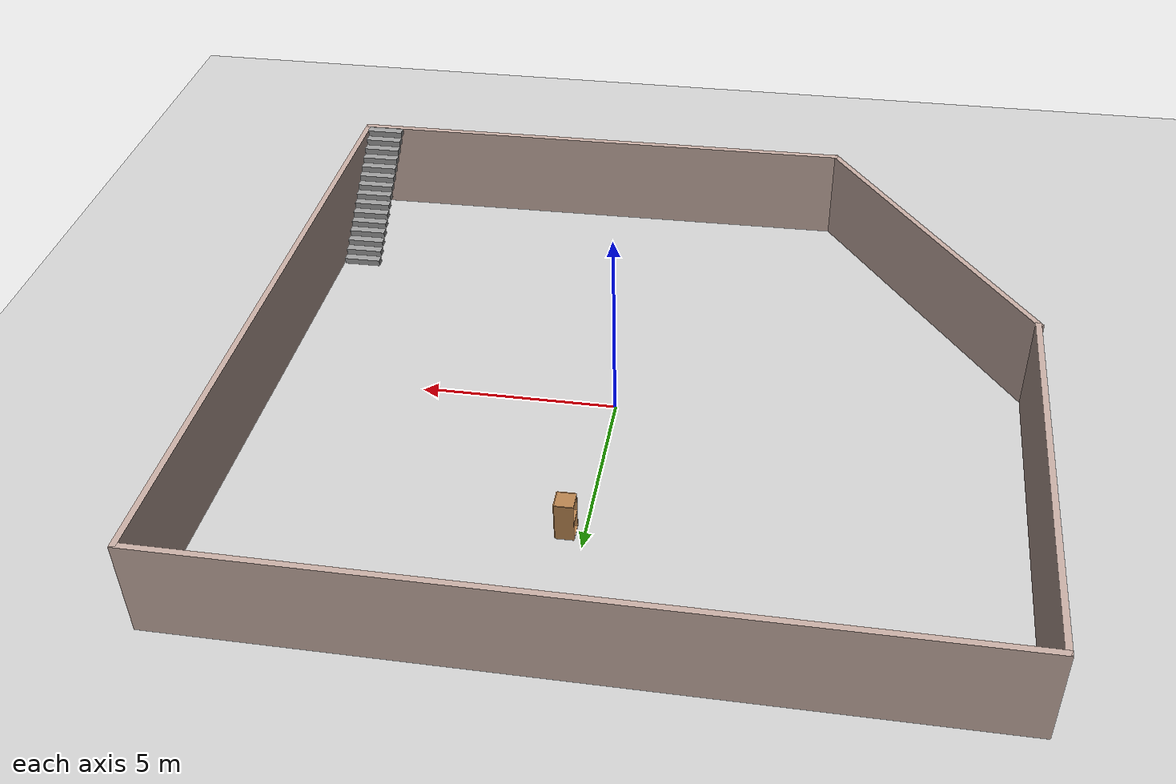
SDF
<sdf version="1.7">
 <world name="default">
  <light name="sun" type="directional">
   <pose>0 0 10 0 -0 0</pose>
   <diffuse>0.8 0.8 0.8 1</diffuse>
   <specular>0.2 0.2 0.2 1</specular>
   <attenuation>
    <range>1000</range>
    <constant>0.9</constant>
    <linear>0.01</linear>
    <quadratic>0.001</quadratic>
   </attenuation>
   <direction>-0.5 0.1 -0.9</direction>
   <spot><inner_angle>0</inner_angle><outer_angle>0</outer_angle><falloff>0</falloff></spot>
  </light>
  <model name="ground_plane">
   <static>1</static>
   <link name="link">
    <collision name="collision">
     <geometry><plane><normal>0 0 1</normal><size>100 100</size></plane></geometry>
     <surface><friction><ode><mu>100</mu><mu2>50</mu2></ode></friction></surface>
    </collision>
    <visual name="visual">
     <cast_shadows>0</cast_shadows>
     <geometry><plane><normal>0 0 1</normal><size>100 100</size></plane></geometry>
     <material>
      <script><uri>file://media/materials/scripts/gazebo.material</uri><name>Gazebo/Grey</name></script>
     </material>
    </visual>
   </link>
  </model>
  <gravity>0 0 -9.8</gravity>
  <magnetic_field>6e-06 2.3e-05 -4.2e-05</magnetic_field>
  <atmosphere type="adiabatic"/>
  <physics type="ode">
   <max_step_size>0.001</max_step_size>
   <real_time_factor>1</real_time_factor>
   <real_time_update_rate>1000</real_time_update_rate>
  </physics>
  <scene><ambient>0.4 0.4 0.4 1</ambient><background>0.7 0.7 0.7 1</background><shadows>1</shadows></scene>
  <audio><device>default</device></audio>
  <spherical_coordinates>
   <surface_model>EARTH_WGS84</surface_model>
   <latitude_deg>0</latitude_deg>
   <longitude_deg>0</longitude_deg>
   <elevation>0</elevation>
   <heading_deg>0</heading_deg>
  </spherical_coordinates>
  <model name="project2_warehouse">
   <pose>-0.635756 -0.074975 0 0 -0 0</pose>
   <link name="Stairs_0">
    <visual name="Stairs_0_Visual_0">
     <pose>8.82005 -5.32583 0.083333 0 -0 0</pose>
     <geometry><box><size>1 0.233333 0.166667</size></box></geometry>
     <material>
      <script><uri>file://media/materials/scripts/gazebo.material</uri><name>Gazebo/Grey</name></script>
      <ambient>1 1 1 1</ambient>
     </material>
     <meta><layer>0</layer></meta>
    </visual>
    <collision name="Stairs_0_Collision_0">
     <geometry><box><size>1 0.233333 0.166667</size></box></geometry>
     <pose>8.82005 -5.32583 0.083333 0 -0 0</pose>
    </collision>
    <visual name="Stairs_0_Visual_1">
     <pose>8.82005 -5.55917 0.25 0 -0 0</pose>
     <geometry><box><size>1 0.233333 0.166667</size></box></geometry>
     <material>
      <script><uri>file://media/materials/scripts/gazebo.material</uri><name>Gazebo/Grey</name></script>
      <ambient>1 1 1 1</ambient>
     </material>
     <meta><layer>0</layer></meta>
    </visual>
    <collision name="Stairs_0_Collision_1">
     <geometry><box><size>1 0.233333 0.166667</size></box></geometry>
     <pose>8.82005 -5.55917 0.25 0 -0 0</pose>
    </collision>
    <visual name="Stairs_0_Visual_2">
     <pose>8.82005 -5.7925 0.416667 0 -0 0</pose>
     <geometry><box><size>1 0.233333 0.166667</size></box></geometry>
     <material>
      <script><uri>file://media/materials/scripts/gazebo.material</uri><name>Gazebo/Grey</name></script>
      <ambient>1 1 1 1</ambient>
     </material>
     <meta><layer>0</layer></meta>
    </visual>
    <collision name="Stairs_0_Collision_2">
     <geometry><box><size>1 0.233333 0.166667</size></box></geometry>
     <pose>8.82005 -5.7925 0.416667 0 -0 0</pose>
    </collision>
    <visual name="Stairs_0_Visual_3">
     <pose>8.82005 -6.02583 0.583333 0 -0 0</pose>
     <geometry><box><size>1 0.233333 0.166667</size></box></geometry>
     <material>
      <script><uri>file://media/materials/scripts/gazebo.material</uri><name>Gazebo/Grey</name></script>
      <ambient>1 1 1 1</ambient>
     </material>
     <meta><layer>0</layer></meta>
    </visual>
    <collision name="Stairs_0_Collision_3">
     <geometry><box><size>1 0.233333 0.166667</size></box></geometry>
     <pose>8.82005 -6.02583 0.583333 0 -0 0</pose>
    </collision>
    <visual name="Stairs_0_Visual_4">
     <pose>8.82005 -6.25917 0.75 0 -0 0</pose>
     <geometry><box><size>1 0.233333 0.166667</size></box></geometry>
     <material>
      <script><uri>file://media/materials/scripts/gazebo.material</uri><name>Gazebo/Grey</name></script>
      <ambient>1 1 1 1</ambient>
     </material>
     <meta><layer>0</layer></meta>
    </visual>
    <collision name="Stairs_0_Collision_4">
     <geometry><box><size>1 0.233333 0.166667</size></box></geometry>
     <pose>8.82005 -6.25917 0.75 0 -0 0</pose>
    </collision>
    <visual name="Stairs_0_Visual_5">
     <pose>8.82005 -6.4925 0.916667 0 -0 0</pose>
     <geometry><box><size>1 0.233333 0.166667</size></box></geometry>
     <material>
      <script><uri>file://media/materials/scripts/gazebo.material</uri><name>Gazebo/Grey</name></script>
      <ambient>1 1 1 1</ambient>
     </material>
     <meta><layer>0</layer></meta>
    </visual>
    <collision name="Stairs_0_Collision_5">
     <geometry><box><size>1 0.233333 0.166667</size></box></geometry>
     <pose>8.82005 -6.4925 0.916667 0 -0 0</pose>
    </collision>
    <visual name="Stairs_0_Visual_6">
     <pose>8.82005 -6.72583 1.08333 0 -0 0</pose>
     <geometry><box><size>1 0.233333 0.166667</size></box></geometry>
     <material>
      <script><uri>file://media/materials/scripts/gazebo.material</uri><name>Gazebo/Grey</name></script>
      <ambient>1 1 1 1</ambient>
     </material>
     <meta><layer>0</layer></meta>
    </visual>
    <collision name="Stairs_0_Collision_6">
     <geometry><box><size>1 0.233333 0.166667</size></box></geometry>
     <pose>8.82005 -6.72583 1.08333 0 -0 0</pose>
    </collision>
    <visual name="Stairs_0_Visual_7">
     <pose>8.82005 -6.95917 1.25 0 -0 0</pose>
     <geometry><box><size>1 0.233333 0.166667</size></box></geometry>
     <material>
      <script><uri>file://media/materials/scripts/gazebo.material</uri><name>Gazebo/Grey</name></script>
      <ambient>1 1 1 1</ambient>
     </material>
     <meta><layer>0</layer></meta>
    </visual>
    <collision name="Stairs_0_Collision_7">
     <geometry><box><size>1 0.233333 0.166667</size></box></geometry>
     <pose>8.82005 -6.95917 1.25 0 -0 0</pose>
    </collision>
    <visual name="Stairs_0_Visual_8">
     <pose>8.82005 -7.1925 1.41667 0 -0 0</pose>
     <geometry><box><size>1 0.233333 0.166667</size></box></geometry>
     <material>
      <script><uri>file://media/materials/scripts/gazebo.material</uri><name>Gazebo/Grey</name></script>
      <ambient>1 1 1 1</ambient>
     </material>
     <meta><layer>0</layer></meta>
    </visual>
    <collision name="Stairs_0_Collision_8">
     <geometry><box><size>1 0.233333 0.166667</size></box></geometry>
     <pose>8.82005 -7.1925 1.41667 0 -0 0</pose>
    </collision>
    <visual name="Stairs_0_Visual_9">
     <pose>8.82005 -7.42583 1.58333 0 -0 0</pose>
     <geometry><box><size>1 0.233333 0.166667</size></box></geometry>
     <material>
      <script><uri>file://media/materials/scripts/gazebo.material</uri><name>Gazebo/Grey</name></script>
      <ambient>1 1 1 1</ambient>
     </material>
     <meta><layer>0</layer></meta>
    </visual>
    <collision name="Stairs_0_Collision_9">
     <geometry><box><size>1 0.233333 0.166667</size></box></geometry>
     <pose>8.82005 -7.42583 1.58333 0 -0 0</pose>
    </collision>
    <visual name="Stairs_0_Visual_10">
     <pose>8.82005 -7.65917 1.75 0 -0 0</pose>
     <geometry><box><size>1 0.233333 0.166667</size></box></geometry>
     <material>
      <script><uri>file://media/materials/scripts/gazebo.material</uri><name>Gazebo/Grey</name></script>
      <ambient>1 1 1 1</ambient>
     </material>
     <meta><layer>0</layer></meta>
    </visual>
    <collision name="Stairs_0_Collision_10">
     <geometry><box><size>1 0.233333 0.166667</size></box></geometry>
     <pose>8.82005 -7.65917 1.75 0 -0 0</pose>
    </collision>
    <visual name="Stairs_0_Visual_11">
     <pose>8.82005 -7.8925 1.91667 0 -0 0</pose>
     <geometry><box><size>1 0.233333 0.166667</size></box></geometry>
     <material>
      <script><uri>file://media/materials/scripts/gazebo.material</uri><name>Gazebo/Grey</name></script>
      <ambient>1 1 1 1</ambient>
     </material>
     <meta><layer>0</layer></meta>
    </visual>
    <collision name="Stairs_0_Collision_11">
     <geometry><box><size>1 0.233333 0.166667</size></box></geometry>
     <pose>8.82005 -7.8925 1.91667 0 -0 0</pose>
    </collision>
    <visual name="Stairs_0_Visual_12">
     <pose>8.82005 -8.12583 2.08333 0 -0 0</pose>
     <geometry><box><size>1 0.233333 0.166667</size></box></geometry>
     <material>
      <script><uri>file://media/materials/scripts/gazebo.material</uri><name>Gazebo/Grey</name></script>
      <ambient>1 1 1 1</ambient>
     </material>
     <meta><layer>0</layer></meta>
    </visual>
    <collision name="Stairs_0_Collision_12">
     <geometry><box><size>1 0.233333 0.166667</size></box></geometry>
     <pose>8.82005 -8.12583 2.08333 0 -0 0</pose>
    </collision>
    <visual name="Stairs_0_Visual_13">
     <pose>8.82005 -8.35917 2.25 0 -0 0</pose>
     <geometry><box><size>1 0.233333 0.166667</size></box></geometry>
     <material>
      <script><uri>file://media/materials/scripts/gazebo.material</uri><name>Gazebo/Grey</name></script>
      <ambient>1 1 1 1</ambient>
     </material>
     <meta><layer>0</layer></meta>
    </visual>
    <collision name="Stairs_0_Collision_13">
     <geometry><box><size>1 0.233333 0.166667</size></box></geometry>
     <pose>8.82005 -8.35917 2.25 0 -0 0</pose>
    </collision>
    <visual name="Stairs_0_Visual_14">
     <pose>8.82005 -8.5925 2.41667 0 -0 0</pose>
     <geometry><box><size>1 0.233333 0.166667</size></box></geometry>
     <material>
      <script><uri>file://media/materials/scripts/gazebo.material</uri><name>Gazebo/Grey</name></script>
      <ambient>1 1 1 1</ambient>
     </material>
     <meta><layer>0</layer></meta>
    </visual>
    <collision name="Stairs_0_Collision_14">
     <geometry><box><size>1 0.233333 0.166667</size></box></geometry>
     <pose>8.82005 -8.5925 2.41667 0 -0 0</pose>
    </collision>
   </link>
   <link name="Wall_0">
    <collision name="Wall_0_Collision">
     <geometry><box><size>19.2094 0.15 2.5</size></box></geometry>
     <pose>0 0 1.25 0 -0 0</pose>
    </collision>
    <visual name="Wall_0_Visual">
     <pose>0 0 1.25 0 -0 0</pose>
     <geometry><box><size>19.2094 0.15 2.5</size></box></geometry>
     <material>
      <script><uri>file://media/materials/scripts/gazebo.material</uri><name>Gazebo/Grey</name></script>
      <ambient>0.760784 0.662745 0.627451 1</ambient>
     </material>
     <meta><layer>0</layer></meta>
    </visual>
    <pose>0.111579 8.83638 0 0 -0 -0.009709</pose>
   </link>
   <link name="Wall_1">
    <collision name="Wall_1_Collision">
     <geometry><box><size>17.6587 0.15 2.5</size></box></geometry>
     <pose>0 0 1.25 0 -0 0</pose>
    </collision>
    <visual name="Wall_1_Visual">
     <pose>0 0 1.25 0 -0 0</pose>
     <geometry><box><size>17.6587 0.15 2.5</size></box></geometry>
     <material>
      <script><uri>file://media/materials/scripts/gazebo.material</uri><name>Gazebo/Grey</name></script>
      <ambient>0.760784 0.662745 0.627451 1</ambient>
     </material>
     <meta><layer>0</layer></meta>
    </visual>
    <pose>9.50729 -0.040077 0 0 -0 -1.58605</pose>
   </link>
   <link name="Wall_2">
    <collision name="Wall_2_Collision">
     <geometry><box><size>13.8695 0.15 2.5</size></box></geometry>
     <pose>0 0 1.25 0 -0 0</pose>
    </collision>
    <visual name="Wall_2_Visual">
     <pose>0 0 1.25 0 -0 0</pose>
     <geometry><box><size>13.8695 0.15 2.5</size></box></geometry>
     <material>
      <script><uri>file://media/materials/scripts/gazebo.material</uri><name>Gazebo/Grey</name></script>
      <ambient>0.760784 0.662745 0.627451 1</ambient>
     </material>
     <meta><layer>0</layer></meta>
    </visual>
    <pose>2.48359 -8.84677 0 0 -0 -3.13382</pose>
   </link>
   <link name="Wall_3">
    <collision name="Wall_3_Collision">
     <geometry><box><size>9.18212 0.15 2.5</size></box></geometry>
     <pose>0 0 1.25 0 -0 0</pose>
    </collision>
    <visual name="Wall_3_Visual">
     <pose>0 0 1.25 0 -0 0</pose>
     <geometry><box><size>9.18212 0.15 2.5</size></box></geometry>
     <material>
      <script><uri>file://media/materials/scripts/gazebo.material</uri><name>Gazebo/Grey</name></script>
      <ambient>0.760784 0.662745 0.627451 1</ambient>
     </material>
     <meta><layer>0</layer></meta>
    </visual>
    <pose>-7.00951 -5.20965 0 0 -0 2.18508</pose>
   </link>
   <link name="Wall_4">
    <collision name="Wall_4_Collision">
     <geometry><box><size>10.5688 0.15 2.5</size></box></geometry>
     <pose>0 0 1.25 0 -0 0</pose>
    </collision>
    <visual name="Wall_4_Visual">
     <pose>0 0 1.25 0 -0 0</pose>
     <geometry><box><size>10.5688 0.15 2.5</size></box></geometry>
     <material>
      <script><uri>file://media/materials/scripts/gazebo.material</uri><name>Gazebo/Grey</name></script>
      <ambient>0.760784 0.662745 0.627451 1</ambient>
     </material>
     <meta><layer>0</layer></meta>
    </visual>
    <pose>-9.49978 3.68956 0 0 -0 1.55504</pose>
   </link>
   <static>1</static>
  </model>
  <model name="cabinet">
   <static>1</static>
   <link name="cabinet_bottom_plate">
    <inertial>
     <pose>0 0 -1 0 -0 0</pose>
     <inertia><ixx>2.05</ixx><ixy>0</ixy><ixz>0</ixz><iyy>2.05</iyy><iyz>0</iyz><izz>2.05</izz></inertia>
     <mass>25</mass>
    </inertial>
    <collision name="cabinet_bottom_plate_geom">
     <pose>0 0 0.01 0 -0 0</pose>
     <geometry><box><size>0.45 0.45 0.02</size></box></geometry>
    </collision>
    <visual name="cabinet_bottom_plate_geom_visual">
     <pose>0 0 0.01 0 -0 0</pose>
     <geometry><box><size>0.45 0.45 0.02</size></box></geometry>
     <material>
      <script><uri>file://media/materials/scripts/gazebo.material</uri><name>Gazebo/Wood</name></script>
     </material>
    </visual>
    <collision name="cabinet_bottom_plate_geom_cabinet_back_plate">
     <pose>0.235 0 0.51 0 -0 0</pose>
     <geometry><box><size>0.02 0.45 1.02</size></box></geometry>
    </collision>
    <visual name="cabinet_bottom_plate_geom_cabinet_back_plate_visual">
     <pose>0.235 0 0.51 0 -0 0</pose>
     <geometry><box><size>0.02 0.45 1.02</size></box></geometry>
     <material>
      <script><uri>file://media/materials/scripts/gazebo.material</uri><name>Gazebo/Wood</name></script>
     </material>
    </visual>
    <collision name="cabinet_bottom_plate_geom_cabinet_left_plate">
     <pose>0 0.235 0.51 0 -0 0</pose>
     <geometry><box><size>0.45 0.02 1.02</size></box></geometry>
    </collision>
    <visual name="cabinet_bottom_plate_geom_cabinet_left_plate_visual">
     <pose>0 0.235 0.51 0 -0 0</pose>
     <geometry><box><size>0.45 0.02 1.02</size></box></geometry>
     <material>
      <script><uri>file://media/materials/scripts/gazebo.material</uri><name>Gazebo/Wood</name></script>
     </material>
    </visual>
    <collision name="cabinet_bottom_plate_geom_cabinet_middle_plate">
     <pose>0 0 0.51 0 -0 0</pose>
     <geometry><box><size>0.45 0.45 0.02</size></box></geometry>
    </collision>
    <visual name="cabinet_bottom_plate_geom_cabinet_middle_plate_visual">
     <pose>0 0 0.51 0 -0 0</pose>
     <geometry><box><size>0.45 0.45 0.02</size></box></geometry>
     <material>
      <script><uri>file://media/materials/scripts/gazebo.material</uri><name>Gazebo/Wood</name></script>
     </material>
    </visual>
    <collision name="cabinet_bottom_plate_geom_cabinet_right_plate">
     <pose>0 -0.235 0.51 0 -0 0</pose>
     <geometry><box><size>0.45 0.02 1.02</size></box></geometry>
    </collision>
    <visual name="cabinet_bottom_plate_geom_cabinet_right_plate_visual">
     <pose>0 -0.235 0.51 0 -0 0</pose>
     <geometry><box><size>0.45 0.02 1.02</size></box></geometry>
     <material>
      <script><uri>file://media/materials/scripts/gazebo.material</uri><name>Gazebo/Wood</name></script>
     </material>
    </visual>
    <collision name="cabinet_bottom_plate_geom_cabinet_top_plate">
     <pose>0 0 1.01 0 -0 0</pose>
     <geometry><box><size>0.45 0.45 0.02</size></box></geometry>
    </collision>
    <visual name="cabinet_bottom_plate_geom_cabinet_top_plate_visual">
     <pose>0 0 1.01 0 -0 0</pose>
     <geometry><box><size>0.45 0.45 0.02</size></box></geometry>
     <material>
      <script><uri>file://media/materials/scripts/gazebo.material</uri><name>Gazebo/Wood</name></script>
     </material>
    </visual>
   </link>
   <pose>0.43586 4.5637 0 0 -0 0</pose>
  </model>
  <model name="bookshelf">
   <static>1</static>
   <link name="link">
    <inertial><mass>1</mass></inertial>
    <collision name="back">
     <pose>0 0.005 0.6 0 -0 0</pose>
     <geometry><box><size>0.9 0.01 1.2</size></box></geometry>
    </collision>
    <visual name="visual1">
     <pose>0 0.005 0.6 0 -0 0</pose>
     <geometry><box><size>0.9 0.01 1.2</size></box></geometry>
     <material>
      <script><uri>file://media/materials/scripts/gazebo.material</uri><name>Gazebo/Wood</name></script>
     </material>
    </visual>
    <collision name="left_side">
     <pose>0.45 -0.195 0.6 0 -0 0</pose>
     <geometry><box><size>0.02 0.4 1.2</size></box></geometry>
    </collision>
    <visual name="visual2">
     <pose>0.45 -0.195 0.6 0 -0 0</pose>
     <geometry><box><size>0.02 0.4 1.2</size></box></geometry>
     <material>
      <script><uri>file://media/materials/scripts/gazebo.material</uri><name>Gazebo/Wood</name></script>
     </material>
    </visual>
    <collision name="right_side">
     <pose>-0.45 -0.195 0.6 0 -0 0</pose>
     <geometry><box><size>0.02 0.4 1.2</size></box></geometry>
    </collision>
    <visual name="visual3">
     <pose>-0.45 -0.195 0.6 0 -0 0</pose>
     <geometry><box><size>0.02 0.4 1.2</size></box></geometry>
     <material>
      <script><uri>file://media/materials/scripts/gazebo.material</uri><name>Gazebo/Wood</name></script>
     </material>
    </visual>
    <collision name="bottom">
     <pose>0 -0.195 0.03 0 -0 0</pose>
     <geometry><box><size>0.88 0.4 0.06</size></box></geometry>
    </collision>
    <visual name="visual4">
     <pose>0 -0.195 0.03 0 -0 0</pose>
     <geometry><box><size>0.88 0.4 0.06</size></box></geometry>
     <material>
      <script><uri>file://media/materials/scripts/gazebo.material</uri><name>Gazebo/Wood</name></script>
     </material>
    </visual>
    <collision name="top">
     <pose>0 -0.195 1.19 0 -0 0</pose>
     <geometry><box><size>0.88 0.4 0.02</size></box></geometry>
    </collision>
    <visual name="visual5">
     <pose>0 -0.195 1.19 0 -0 0</pose>
     <geometry><box><size>0.88 0.4 0.02</size></box></geometry>
     <material>
      <script><uri>file://media/materials/scripts/gazebo.material</uri><name>Gazebo/Wood</name></script>
     </material>
    </visual>
    <collision name="low_shelf">
     <pose>0 -0.195 0.43 0 -0 0</pose>
     <geometry><box><size>0.88 0.4 0.02</size></box></geometry>
    </collision>
    <visual name="visual6">
     <pose>0 -0.195 0.43 0 -0 0</pose>
     <geometry><box><size>0.88 0.4 0.02</size></box></geometry>
     <material>
      <script><uri>file://media/materials/scripts/gazebo.material</uri><name>Gazebo/Wood</name></script>
     </material>
    </visual>
    <collision name="high_shelf">
     <pose>0 -0.195 0.8 0 -0 0</pose>
     <geometry><box><size>0.88 0.4 0.02</size></box></geometry>
    </collision>
    <visual name="visual7">
     <pose>0 -0.195 0.8 0 -0 0</pose>
     <geometry><box><size>0.88 0.4 0.02</size></box></geometry>
     <material>
      <script><uri>file://media/materials/scripts/gazebo.material</uri><name>Gazebo/Wood</name></script>
     </material>
    </visual>
   </link>
   <pose>4.87451 8.51574 0 0 -0 0</pose>
  </model>
 </world>
</sdf>
